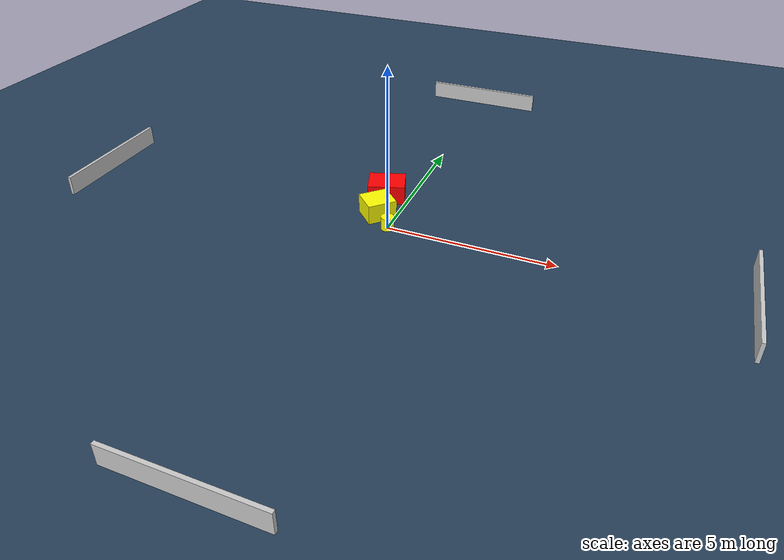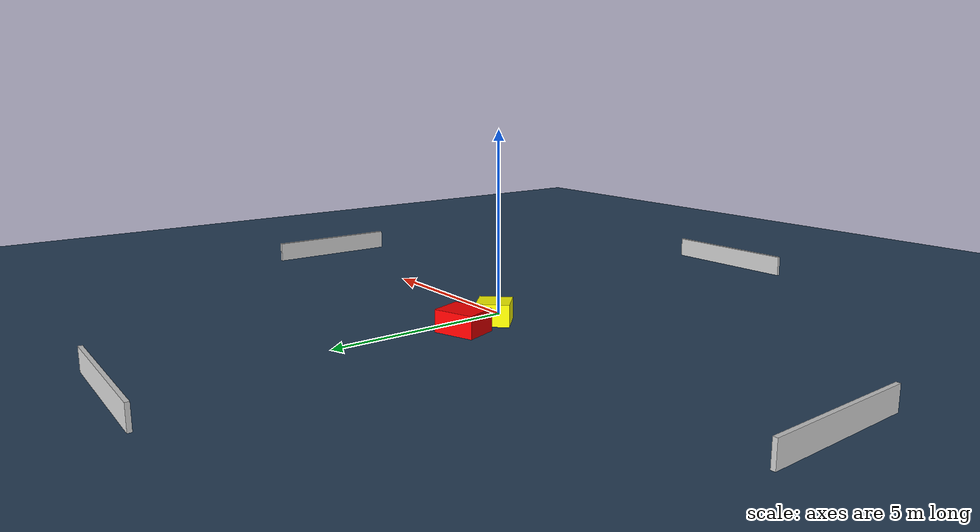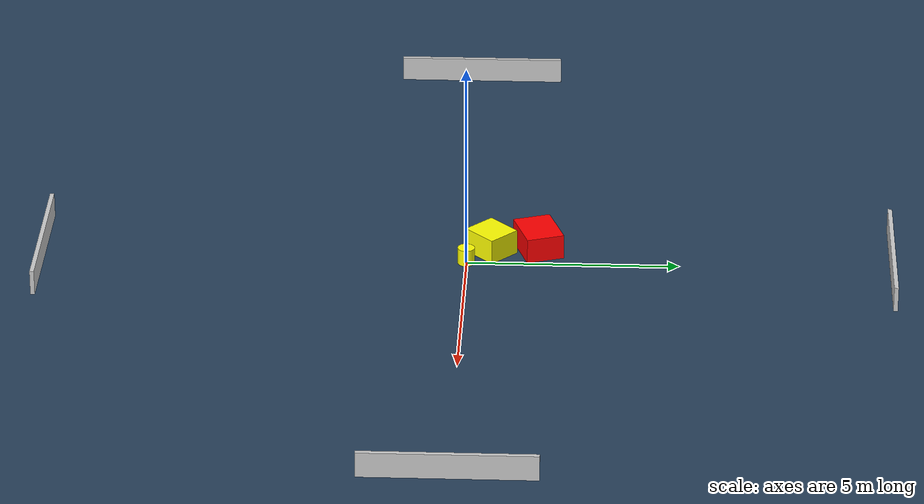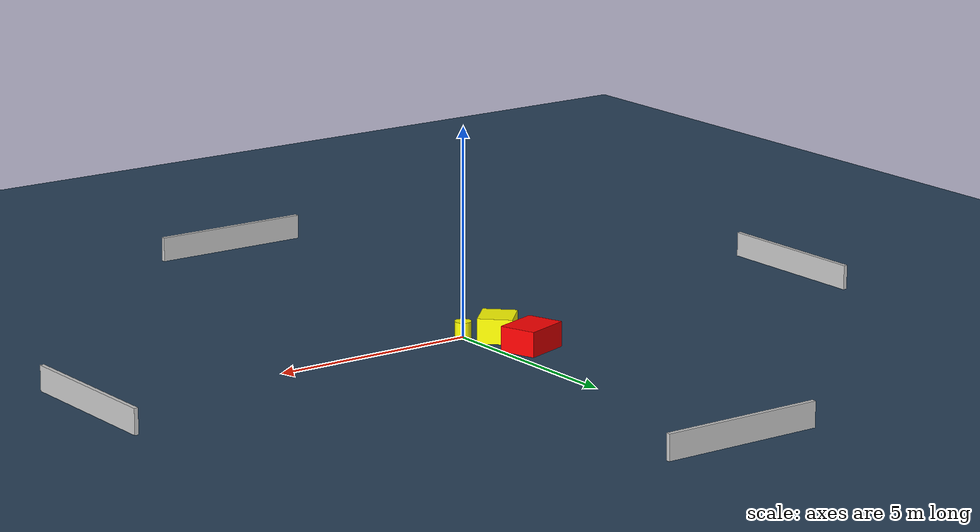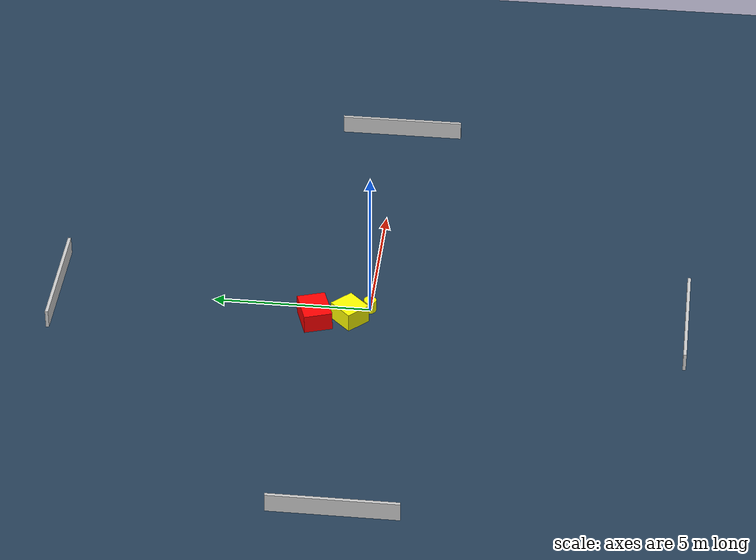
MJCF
<?xml version="1.0" ?>
<mujoco model="generated_environment">
  <option timestep="0.01" integrator="RK4" cone="elliptic"/>
  <default>
    <geom density="1"/>
  </default>
  <asset>
    <texture builtin="gradient" height="3072" name="skybox" rgb1="0.3 0.5 0.7" rgb2="0 0 0" type="skybox" width="512"/>
    <texture builtin="checker" height="300" name="groundplane" rgb1="0.2 0.3 0.4" rgb2="0.1 0.2 0.3" type="2d" width="300"/>
    <material name="groundplane" reflectance="0.2" texrepeat="5 5" texture="groundplane"/>
  </asset>
  <worldbody>
    <light dir="0 0 -1" directional="true" pos="0 0 1.5"/>
    <geom condim="3" friction="0.5 0.005 0.001" material="groundplane" name="floor" pos="0 0 0" size="0 0 0.05" type="plane"/>
    <body name="walls">
      <geom name="wall_1" condim="4" pos="-10.0 0.0 0.3" rgba="0.800000011920929 0.800000011920929 0.800000011920929 1.0" size="0.05 2.0 0.3" type="box"/>
      <geom name="wall_2" condim="4" pos="10.0 0.0 0.3" rgba="0.800000011920929 0.800000011920929 0.800000011920929 1.0" size="0.05 2.0 0.3" type="box"/>
      <geom name="wall_3" condim="4" pos="0.0 -10.0 0.3" rgba="0.800000011920929 0.800000011920929 0.800000011920929 1.0" size="2.0 0.05 0.3" type="box"/>
      <geom name="wall_4" condim="4" pos="0.0 10.0 0.3" rgba="0.800000011920929 0.800000011920929 0.800000011920929 1.0" size="2.0 0.05 0.3" type="box"/>
    </body>
    <body name="robot">
      <joint name="joint_x" type="slide" pos="0 0 0" axis="1 0 0"/>
      <joint name="joint_y" type="slide" pos="0 0 0" axis="0 1 0"/>
      <geom name="robot" type="cylinder" pos="0.0 0.0 0.2" size="0.2 0.2 0.0" mass="5.0" friction="1.0 0.005 0.0001" condim="4" rgba="1.0 1.0 0.0 1.0"/>
    </body>
    <body name="obstacle_1_movable">
      <geom name="obstacle_1_movable" condim="4" pos="-0.5624061938152154 0.5782308224258178 0.3" euler="0 0 315.2129193180228" friction="0.0 0.005 0.001" rgba="1.0 1.0 0.0 1.0" size="0.41040039073528944 0.44517069705640283 0.3" type="box" mass="0.1"/>
      <joint type="free"/>
    </body>
    <body name="obstacle_2_static">
      <geom name="obstacle_2_static" condim="4" pos="-0.7149809694404565 1.6799536003192812 0.3" euler="0 0 198.721565838062" friction="0.0 0.005 0.001" rgba="1.0 0.0 0.0 1.0" size="0.5717052880335896 0.4509303073904511 0.3" type="box"/>
    </body>
  </worldbody>
  <actuator>
    <motor name="actuator_x" joint="joint_x" gear="1" ctrlrange="-1 1"/>
    <motor name="actuator_y" joint="joint_y" gear="1" ctrlrange="-1 1"/>
  </actuator>
</mujoco>
